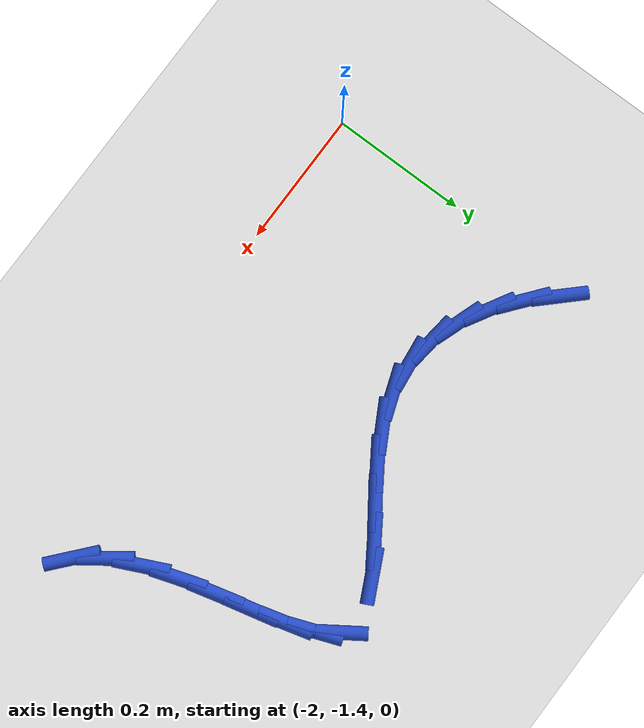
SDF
<sdf version="1.6">
 <world name="default">
  <model name="ground_plane">
   <static>1</static>
   <link name="link">
    <collision name="collision">
     <geometry><plane><normal>0 0 1</normal><size>100 100</size></plane></geometry>
     <surface><friction><ode><mu>100</mu><mu2>50</mu2></ode></friction></surface>
    </collision>
    <visual name="visual">
     <cast_shadows>0</cast_shadows>
     <geometry><plane><normal>0 0 1</normal><size>100 100</size></plane></geometry>
     <material>
      <script><uri>file://media/materials/scripts/gazebo.material</uri><name>Gazebo/WhiteGlow</name></script>
     </material>
    </visual>
   </link>
  </model>
  <model name="line">
   <link name="link_103">
    <pose>-1.982992539362624 -1.0106600052548296 0.01 0 1.57 -0.8026450328855147</pose>
    <collision name="collision">
     <geometry><cylinder><radius>0.01</radius><length>0.08</length></cylinder></geometry>
    </collision>
    <visual name="visual">
     <material>
      <script><name>Gazebo/Blue</name><uri>file://media/materials/scripts/gazebo.material</uri></script>
     </material>
     <geometry><cylinder><radius>0.01</radius><length>0.08</length></cylinder></geometry>
    </visual>
   </link>
   <link name="link_104">
    <pose>-1.9472979970361401 -1.0476075198936903 0.01 0 1.57 -0.6732727934203353</pose>
    <collision name="collision">
     <geometry><cylinder><radius>0.01</radius><length>0.08</length></cylinder></geometry>
    </collision>
    <visual name="visual">
     <material>
      <script><name>Gazebo/Blue</name><uri>file://media/materials/scripts/gazebo.material</uri></script>
     </material>
     <geometry><cylinder><radius>0.01</radius><length>0.08</length></cylinder></geometry>
    </visual>
   </link>
   <link name="link_105">
    <pose>-1.9089387225903471 -1.0782026876540278 0.01 0 1.57 -0.5185520599368872</pose>
    <collision name="collision">
     <geometry><cylinder><radius>0.01</radius><length>0.08</length></cylinder></geometry>
    </collision>
    <visual name="visual">
     <material>
      <script><name>Gazebo/Blue</name><uri>file://media/materials/scripts/gazebo.material</uri></script>
     </material>
     <geometry><cylinder><radius>0.01</radius><length>0.08</length></cylinder></geometry>
    </visual>
   </link>
   <link name="link_106">
    <pose>-1.8682897487179198 -1.1013986509295655 0.01 0 1.57 -0.3335869378967448</pose>
    <collision name="collision">
     <geometry><cylinder><radius>0.01</radius><length>0.08</length></cylinder></geometry>
    </collision>
    <visual name="visual">
     <material>
      <script><name>Gazebo/Blue</name><uri>file://media/materials/scripts/gazebo.material</uri></script>
     </material>
     <geometry><cylinder><radius>0.01</radius><length>0.08</length></cylinder></geometry>
    </visual>
   </link>
   <link name="link_107">
    <pose>-1.8257261081115352 -1.1161485521140275 0.01 0 1.57 -0.11863732736368328</pose>
    <collision name="collision">
     <geometry><cylinder><radius>0.01</radius><length>0.08</length></cylinder></geometry>
    </collision>
    <visual name="visual">
     <material>
      <script><name>Gazebo/Blue</name><uri>file://media/materials/scripts/gazebo.material</uri></script>
     </material>
     <geometry><cylinder><radius>0.01</radius><length>0.08</length></cylinder></geometry>
    </visual>
   </link>
   <link name="link_108">
    <pose>-1.78162283346387 -1.121405533601137 0.01 0 1.57 0.11617526845770484</pose>
    <collision name="collision">
     <geometry><cylinder><radius>0.01</radius><length>0.08</length></cylinder></geometry>
    </collision>
    <visual name="visual">
     <material>
      <script><name>Gazebo/Blue</name><uri>file://media/materials/scripts/gazebo.material</uri></script>
     </material>
     <geometry><cylinder><radius>0.01</radius><length>0.08</length></cylinder></geometry>
    </visual>
   </link>
   <link name="link_109">
    <pose>-1.7363549574676005 -1.1161227377846183 0.01 0 1.57 0.3453302391763078</pose>
    <collision name="collision">
     <geometry><cylinder><radius>0.01</radius><length>0.08</length></cylinder></geometry>
    </collision>
    <visual name="visual">
     <material>
      <script><name>Gazebo/Blue</name><uri>file://media/materials/scripts/gazebo.material</uri></script>
     </material>
     <geometry><cylinder><radius>0.01</radius><length>0.08</length></cylinder></geometry>
    </visual>
   </link>
   <link name="link_110">
    <pose>-1.6903369481568984 -1.0995679671669556 0.01 0 1.57 0.5044145405226672</pose>
    <collision name="collision">
     <geometry><cylinder><radius>0.01</radius><length>0.08</length></cylinder></geometry>
    </collision>
    <visual name="visual">
     <material>
      <script><name>Gazebo/Blue</name><uri>file://media/materials/scripts/gazebo.material</uri></script>
     </material>
     <geometry><cylinder><radius>0.01</radius><length>0.08</length></cylinder></geometry>
    </visual>
   </link>
   <link name="link_111">
    <pose>-1.6443830895209268 -1.0741992117096986 0.01 0 1.57 0.5875958524622866</pose>
    <collision name="collision">
     <geometry><cylinder><radius>0.01</radius><length>0.08</length></cylinder></geometry>
    </collision>
    <visual name="visual">
     <material>
      <script><name>Gazebo/Blue</name><uri>file://media/materials/scripts/gazebo.material</uri></script>
     </material>
     <geometry><cylinder><radius>0.01</radius><length>0.08</length></cylinder></geometry>
    </visual>
   </link>
   <link name="link_112">
    <pose>-1.5995402553938214 -1.0443303282983583 0.01 0 1.57 0.6131547440681003</pose>
    <collision name="collision">
     <geometry><cylinder><radius>0.01</radius><length>0.08</length></cylinder></geometry>
    </collision>
    <visual name="visual">
     <material>
      <script><name>Gazebo/Blue</name><uri>file://media/materials/scripts/gazebo.material</uri></script>
     </material>
     <geometry><cylinder><radius>0.01</radius><length>0.08</length></cylinder></geometry>
    </visual>
   </link>
   <link name="link_113">
    <pose>-1.5568582010993355 -1.0142981656273695 0.01 0 1.57 0.5799663070705203</pose>
    <collision name="collision">
     <geometry><cylinder><radius>0.01</radius><length>0.08</length></cylinder></geometry>
    </collision>
    <visual name="visual">
     <material>
      <script><name>Gazebo/Blue</name><uri>file://media/materials/scripts/gazebo.material</uri></script>
     </material>
     <geometry><cylinder><radius>0.01</radius><length>0.08</length></cylinder></geometry>
    </visual>
   </link>
   <link name="link_114">
    <pose>-1.517386681961223 -0.9884395723911666 0.01 0 1.57 0.45778149497249476</pose>
    <collision name="collision">
     <geometry><cylinder><radius>0.01</radius><length>0.08</length></cylinder></geometry>
    </collision>
    <visual name="visual">
     <material>
      <script><name>Gazebo/Blue</name><uri>file://media/materials/scripts/gazebo.material</uri></script>
     </material>
     <geometry><cylinder><radius>0.01</radius><length>0.08</length></cylinder></geometry>
    </visual>
   </link>
   <link name="link_117">
    <pose>-1.4285069780749577 -0.9786167250926548 0.01 0 1.57 -0.9750997321748454</pose>
    <collision name="collision">
     <geometry><cylinder><radius>0.01</radius><length>0.08</length></cylinder></geometry>
    </collision>
    <visual name="visual">
     <material>
      <script><name>Gazebo/Blue</name><uri>file://media/materials/scripts/gazebo.material</uri></script>
     </material>
     <geometry><cylinder><radius>0.01</radius><length>0.08</length></cylinder></geometry>
    </visual>
   </link>
   <link name="link_118">
    <pose>-1.4100013635433764 -1.0059176759220216 0.01 0 1.57 -1.206853755901817</pose>
    <collision name="collision">
     <geometry><cylinder><radius>0.01</radius><length>0.08</length></cylinder></geometry>
    </collision>
    <visual name="visual">
     <material>
      <script><name>Gazebo/Blue</name><uri>file://media/materials/scripts/gazebo.material</uri></script>
     </material>
     <geometry><cylinder><radius>0.01</radius><length>0.08</length></cylinder></geometry>
    </visual>
   </link>
   <link name="link_119">
    <pose>-1.3951145669963092 -1.0449997913438698 0.01 0 1.57 -1.3045688062880128</pose>
    <collision name="collision">
     <geometry><cylinder><radius>0.01</radius><length>0.08</length></cylinder></geometry>
    </collision>
    <visual name="visual">
     <material>
      <script><name>Gazebo/Blue</name><uri>file://media/materials/scripts/gazebo.material</uri></script>
     </material>
     <geometry><cylinder><radius>0.01</radius><length>0.08</length></cylinder></geometry>
    </visual>
   </link>
   <link name="link_120">
    <pose>-1.382199863364467 -1.0923582807857366 0.01 0 1.57 -1.333834916400966</pose>
    <collision name="collision">
     <geometry><cylinder><radius>0.01</radius><length>0.08</length></cylinder></geometry>
    </collision>
    <visual name="visual">
     <material>
      <script><name>Gazebo/Blue</name><uri>file://media/materials/scripts/gazebo.material</uri></script>
     </material>
     <geometry><cylinder><radius>0.01</radius><length>0.08</length></cylinder></geometry>
    </visual>
   </link>
   <link name="link_121">
    <pose>-1.3696105275785586 -1.1444883536751587 0.01 0 1.57 -1.3159457888650319</pose>
    <collision name="collision">
     <geometry><cylinder><radius>0.01</radius><length>0.08</length></cylinder></geometry>
    </collision>
    <visual name="visual">
     <material>
      <script><name>Gazebo/Blue</name><uri>file://media/materials/scripts/gazebo.material</uri></script>
     </material>
     <geometry><cylinder><radius>0.01</radius><length>0.08</length></cylinder></geometry>
    </visual>
   </link>
   <link name="link_122">
    <pose>-1.3556998345692968 -1.1978852194396712 0.01 0 1.57 -1.2521131279706716</pose>
    <collision name="collision">
     <geometry><cylinder><radius>0.01</radius><length>0.08</length></cylinder></geometry>
    </collision>
    <visual name="visual">
     <material>
      <script><name>Gazebo/Blue</name><uri>file://media/materials/scripts/gazebo.material</uri></script>
     </material>
     <geometry><cylinder><radius>0.01</radius><length>0.08</length></cylinder></geometry>
    </visual>
   </link>
   <link name="link_123">
    <pose>-1.3388210592673904 -1.2490440875068112 0.01 0 1.57 -1.1287692765347577</pose>
    <collision name="collision">
     <geometry><cylinder><radius>0.01</radius><length>0.08</length></cylinder></geometry>
    </collision>
    <visual name="visual">
     <material>
      <script><name>Gazebo/Blue</name><uri>file://media/materials/scripts/gazebo.material</uri></script>
     </material>
     <geometry><cylinder><radius>0.01</radius><length>0.08</length></cylinder></geometry>
    </visual>
   </link>
   <link name="link_124">
    <pose>-1.3173274791325988 -1.2944601716977462 0.01 0 1.57 -0.9329404996517957</pose>
    <collision name="collision">
     <geometry><cylinder><radius>0.01</radius><length>0.08</length></cylinder></geometry>
    </collision>
    <visual name="visual">
     <material>
      <script><name>Gazebo/Blue</name><uri>file://media/materials/scripts/gazebo.material</uri></script>
     </material>
     <geometry><cylinder><radius>0.01</radius><length>0.08</length></cylinder></geometry>
    </visual>
   </link>
   <link name="link_125">
    <pose>-1.2899860699845327 -1.331347390089245 0.01 0 1.57 -0.7108584184993713</pose>
    <collision name="collision">
     <geometry><cylinder><radius>0.01</radius><length>0.08</length></cylinder></geometry>
    </collision>
    <visual name="visual">
     <material>
      <script><name>Gazebo/Blue</name><uri>file://media/materials/scripts/gazebo.material</uri></script>
     </material>
     <geometry><cylinder><radius>0.01</radius><length>0.08</length></cylinder></geometry>
    </visual>
   </link>
  </model>
 </world>
</sdf>
